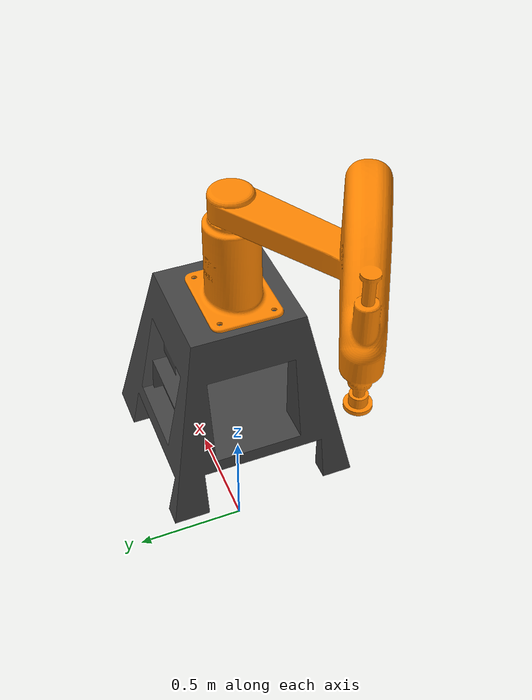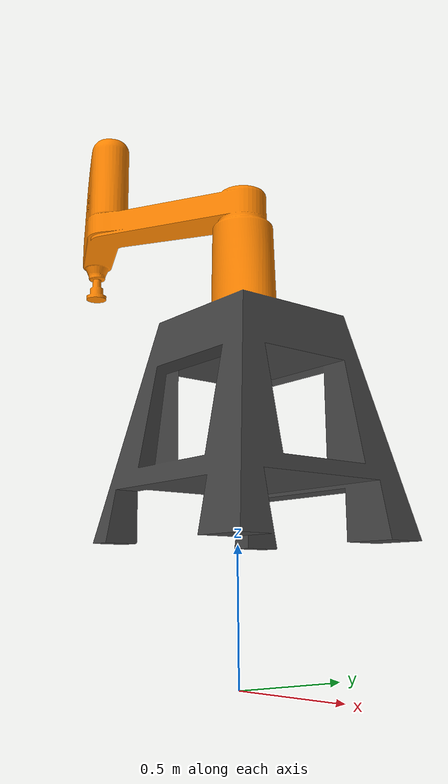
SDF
<?xml version='1.0'?>
<sdf version='1.4'>

  <model name="scara">
    <static>true</static>
    <link name='base_link'>
      <pose>0 0 0.5 0 0 0</pose>
      <collision name='collision'>
        <geometry>
          <mesh>
            <uri>model://scara/meshes/scara.dae</uri>
          </mesh>
        </geometry>
      </collision>
      <visual name='visual'>
        <geometry>
          <mesh>
            <uri>model://scara/meshes/scara.dae</uri>
          </mesh>
        </geometry>
      </visual>
    </link>
  </model>
</sdf>
